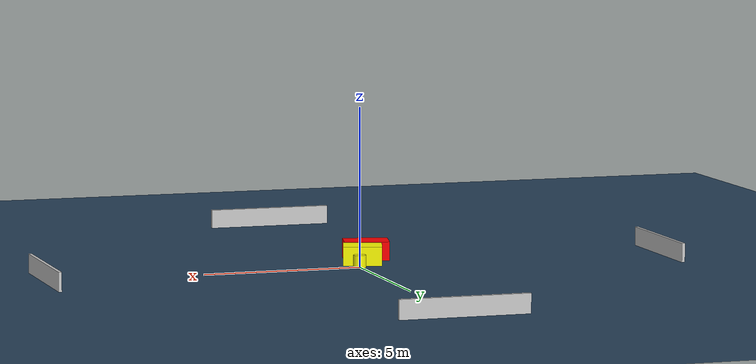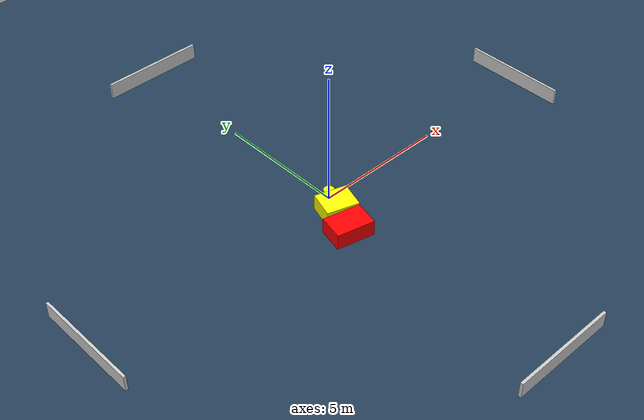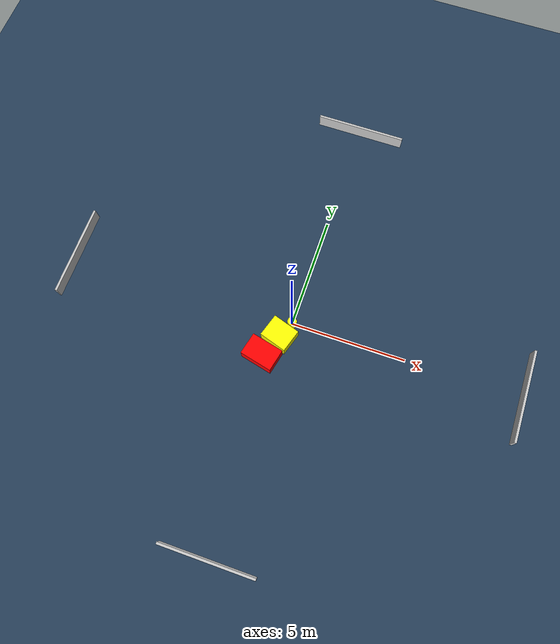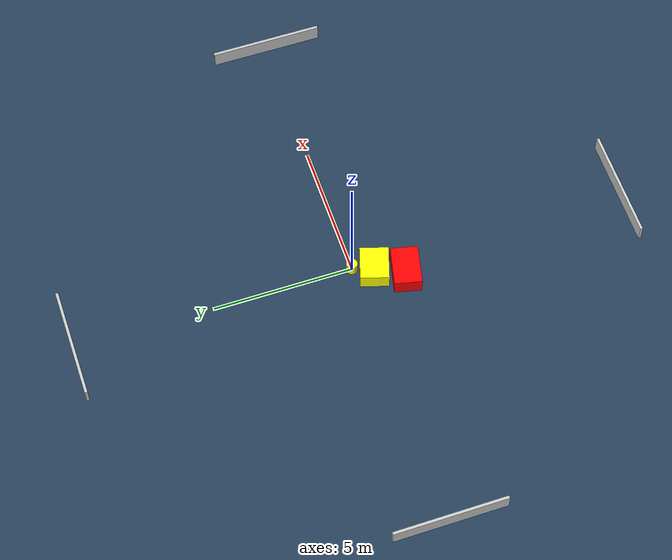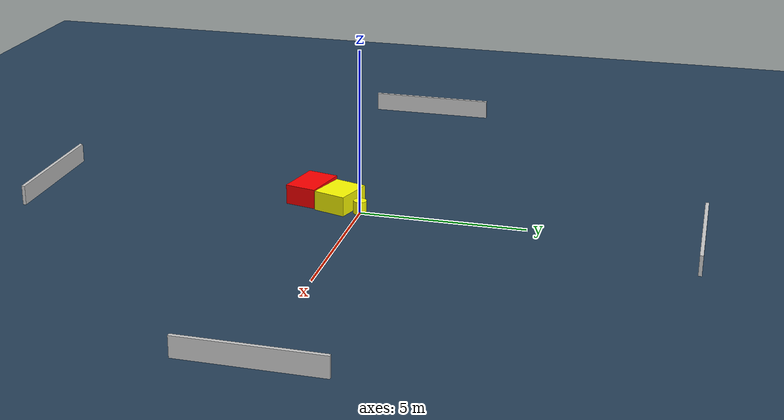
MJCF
<?xml version="1.0" ?>
<mujoco model="generated_environment">
  <option timestep="0.01" integrator="RK4" cone="elliptic"/>
  <default>
    <geom density="1"/>
  </default>
  <asset>
    <texture builtin="gradient" height="3072" name="skybox" rgb1="0.3 0.5 0.7" rgb2="0 0 0" type="skybox" width="512"/>
    <texture builtin="checker" height="300" name="groundplane" rgb1="0.2 0.3 0.4" rgb2="0.1 0.2 0.3" type="2d" width="300"/>
    <material name="groundplane" reflectance="0.2" texrepeat="5 5" texture="groundplane"/>
  </asset>
  <worldbody>
    <light dir="0 0 -1" directional="true" pos="0 0 1.5"/>
    <geom condim="3" friction="0.5 0.005 0.001" material="groundplane" name="floor" pos="0 0 0" size="0 0 0.05" type="plane"/>
    <body name="walls">
      <geom name="wall_1" condim="4" pos="-10.0 0.0 0.3" rgba="0.800000011920929 0.800000011920929 0.800000011920929 1.0" size="0.05 2.0 0.3" type="box"/>
      <geom name="wall_2" condim="4" pos="10.0 0.0 0.3" rgba="0.800000011920929 0.800000011920929 0.800000011920929 1.0" size="0.05 2.0 0.3" type="box"/>
      <geom name="wall_3" condim="4" pos="0.0 -10.0 0.3" rgba="0.800000011920929 0.800000011920929 0.800000011920929 1.0" size="2.0 0.05 0.3" type="box"/>
      <geom name="wall_4" condim="4" pos="0.0 10.0 0.3" rgba="0.800000011920929 0.800000011920929 0.800000011920929 1.0" size="2.0 0.05 0.3" type="box"/>
    </body>
    <body name="robot">
      <joint name="joint_x" type="slide" pos="0 0 0" axis="1 0 0"/>
      <joint name="joint_y" type="slide" pos="0 0 0" axis="0 1 0"/>
      <geom name="robot" type="cylinder" pos="0.0 0.0 0.2" size="0.2 0.2 0.0" mass="5.0" friction="1.0 0.005 0.0001" condim="4" rgba="1.0 1.0 0.0 1.0"/>
    </body>
    <body name="obstacle_1_movable">
      <geom name="obstacle_1_movable" condim="4" pos="-0.31693070355763003 -0.7112293059035705 0.3" euler="0 0 342.5764615908449" friction="0.0 0.005 0.001" rgba="1.0 1.0 0.0 1.0" size="0.6055976380144468 0.5071150440638352 0.3" type="box" mass="0.1"/>
      <joint type="free"/>
    </body>
    <body name="obstacle_2_static">
      <geom name="obstacle_2_static" condim="4" pos="-0.7531910079461034 -1.724048160175026 0.3" euler="0 0 346.9267766277917" friction="0.0 0.005 0.001" rgba="1.0 0.0 0.0 1.0" size="0.7110655090540816 0.48456318073505156 0.3" type="box"/>
    </body>
  </worldbody>
  <actuator>
    <motor name="actuator_x" joint="joint_x" gear="1" ctrlrange="-1 1"/>
    <motor name="actuator_y" joint="joint_y" gear="1" ctrlrange="-1 1"/>
  </actuator>
</mujoco>
